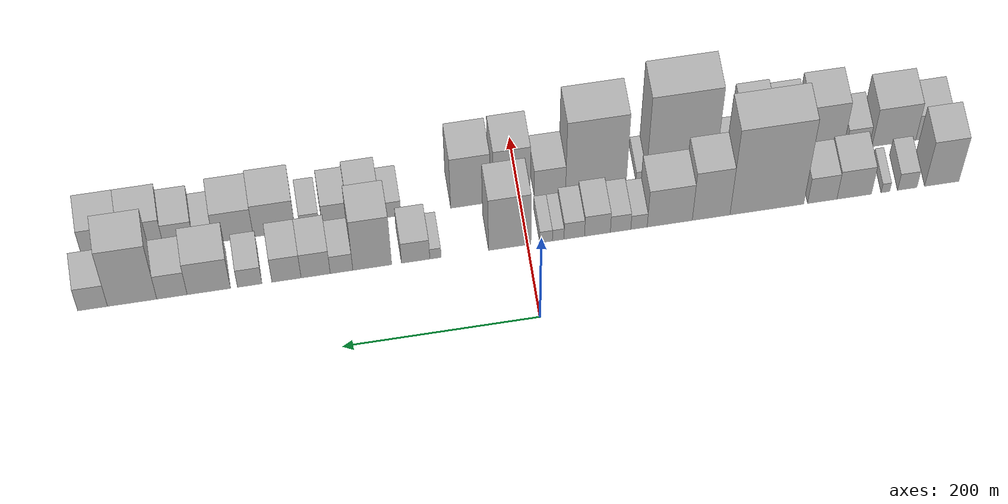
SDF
<sdf version="1.6">
 <world name="default">
  <scene>
   <sky><clouds><speed>12</speed></clouds></sky>
   <ambient>0.4 0.4 0.4 1</ambient>
   <background>0.7 0.7 0.7 1</background>
   <shadows>1</shadows>
  </scene>
  <gravity>0 0 -9.8066</gravity>
  <magnetic_field>6e-06 2.3e-05 -4.2e-05</magnetic_field>
  <physics default="0" name="default_physics" type="ode">
   <ode>
    <solver>
     <type>quick</type>
     <iters>10</iters>
     <sor>1.0</sor>
     <use_dynamic_moi_rescaling>0</use_dynamic_moi_rescaling>
    </solver>
    <constraints>
     <cfm>0</cfm>
     <erp>0.2</erp>
     <contact_max_correcting_vel>100</contact_max_correcting_vel>
     <contact_surface_layer>0.001</contact_surface_layer>
    </constraints>
   </ode>
   <max_step_size>0.004</max_step_size>
   <real_time_factor>1</real_time_factor>
   <real_time_update_rate>250</real_time_update_rate>
  </physics>
  <light name="sun" type="directional">
   <pose>0 0 10 0 0 0</pose>
   <diffuse>0.8 0.8 0.8 1</diffuse>
   <specular>0.2 0.2 0.2 1</specular>
   <attenuation>
    <range>1000</range>
    <constant>0.9</constant>
    <linear>0.01</linear>
    <quadratic>0.001</quadratic>
   </attenuation>
   <direction>-0.5 0.1 -0.9</direction>
  </light>
  <model name="building_1">
   <static>1</static>
   <pose>100.0000 -426.2330 0 0.000000 0.000000 0.000000</pose>
   <link name="link">
    <pose>0 0 52.50 0 0 0</pose>
    <collision name="collision"><geometry><box><size>40.0000 35.5341 105.0000</size></box></geometry></collision>
    <visual name="visual">
     <cast_shadows>0</cast_shadows>
     <geometry><box><size>40.0000 35.5341 105.0000</size></box></geometry>
     <material>
      <script>
       <uri>model://HANNAS_wall/materials/scripts</uri>
       <uri>model://HANNAS_wall/materials/textures</uri>
       <name>vrc/HANNAS_wall</name>
      </script>
     </material>
    </visual>
   </link>
  </model>
  <model name="building_2">
   <static>1</static>
   <pose>100.0000 -390.4082 0 0.000000 0.000000 0.000000</pose>
   <link name="link">
    <pose>0 0 19.50 0 0 0</pose>
    <collision name="collision"><geometry><box><size>40.0000 20.1155 39.0000</size></box></geometry></collision>
    <visual name="visual">
     <cast_shadows>0</cast_shadows>
     <geometry><box><size>40.0000 20.1155 39.0000</size></box></geometry>
     <material>
      <script>
       <uri>model://HANNAS_wall/materials/scripts</uri>
       <uri>model://HANNAS_wall/materials/textures</uri>
       <name>vrc/HANNAS_wall</name>
      </script>
     </material>
    </visual>
   </link>
  </model>
  <model name="building_3">
   <static>1</static>
   <pose>100.0000 -367.8501 0 0.000000 0.000000 0.000000</pose>
   <link name="link">
    <pose>0 0 10.50 0 0 0</pose>
    <collision name="collision"><geometry><box><size>40.0000 9.0007 21.0000</size></box></geometry></collision>
    <visual name="visual">
     <cast_shadows>0</cast_shadows>
     <geometry><box><size>40.0000 9.0007 21.0000</size></box></geometry>
     <material>
      <script>
       <uri>model://HANNAS_wall/materials/scripts</uri>
       <uri>model://HANNAS_wall/materials/textures</uri>
       <name>vrc/HANNAS_wall</name>
      </script>
     </material>
    </visual>
   </link>
  </model>
  <model name="building_4">
   <static>1</static>
   <pose>100.0000 -335.4870 0 0.000000 0.000000 0.000000</pose>
   <link name="link">
    <pose>0 0 33.00 0 0 0</pose>
    <collision name="collision"><geometry><box><size>40.0000 35.7254 66.0000</size></box></geometry></collision>
    <visual name="visual">
     <cast_shadows>0</cast_shadows>
     <geometry><box><size>40.0000 35.7254 66.0000</size></box></geometry>
     <material>
      <script>
       <uri>model://HANNAS_wall/materials/scripts</uri>
       <uri>model://HANNAS_wall/materials/textures</uri>
       <name>vrc/HANNAS_wall</name>
      </script>
     </material>
    </visual>
   </link>
  </model>
  <model name="building_5">
   <static>1</static>
   <pose>100.0000 -302.4615 0 0.000000 0.000000 0.000000</pose>
   <link name="link">
    <pose>0 0 30.00 0 0 0</pose>
    <collision name="collision"><geometry><box><size>40.0000 30.3257 60.0000</size></box></geometry></collision>
    <visual name="visual">
     <cast_shadows>0</cast_shadows>
     <geometry><box><size>40.0000 30.3257 60.0000</size></box></geometry>
     <material>
      <script>
       <uri>model://HANNAS_wall/materials/scripts</uri>
       <uri>model://HANNAS_wall/materials/textures</uri>
       <name>vrc/HANNAS_wall</name>
      </script>
     </material>
    </visual>
   </link>
  </model>
  <model name="building_6">
   <static>1</static>
   <pose>100.0000 -245.2362 0 0.000000 0.000000 0.000000</pose>
   <link name="link">
    <pose>0 0 100.50 0 0 0</pose>
    <collision name="collision"><geometry><box><size>40.0000 76.1249 201.0000</size></box></geometry></collision>
    <visual name="visual">
     <cast_shadows>0</cast_shadows>
     <geometry><box><size>40.0000 76.1249 201.0000</size></box></geometry>
     <material>
      <script>
       <uri>model://HANNAS_wall/materials/scripts</uri>
       <uri>model://HANNAS_wall/materials/textures</uri>
       <name>vrc/HANNAS_wall</name>
      </script>
     </material>
    </visual>
   </link>
  </model>
  <model name="building_7">
   <static>1</static>
   <pose>100.0000 -187.8042 0 0.000000 0.000000 0.000000</pose>
   <link name="link">
    <pose>0 0 57.00 0 0 0</pose>
    <collision name="collision"><geometry><box><size>40.0000 38.7392 114.0000</size></box></geometry></collision>
    <visual name="visual">
     <cast_shadows>0</cast_shadows>
     <geometry><box><size>40.0000 38.7392 114.0000</size></box></geometry>
     <material>
      <script>
       <uri>model://HANNAS_wall/materials/scripts</uri>
       <uri>model://HANNAS_wall/materials/textures</uri>
       <name>vrc/HANNAS_wall</name>
      </script>
     </material>
    </visual>
   </link>
  </model>
  <model name="building_8">
   <static>1</static>
   <pose>100.0000 -145.2583 0 0.000000 0.000000 0.000000</pose>
   <link name="link">
    <pose>0 0 43.50 0 0 0</pose>
    <collision name="collision"><geometry><box><size>40.0000 46.3527 87.0000</size></box></geometry></collision>
    <visual name="visual">
     <cast_shadows>0</cast_shadows>
     <geometry><box><size>40.0000 46.3527 87.0000</size></box></geometry>
     <material>
      <script>
       <uri>model://HANNAS_wall/materials/scripts</uri>
       <uri>model://HANNAS_wall/materials/textures</uri>
       <name>vrc/HANNAS_wall</name>
      </script>
     </material>
    </visual>
   </link>
  </model>
  <model name="building_9">
   <static>1</static>
   <pose>100.0000 -113.6604 0 0.000000 0.000000 0.000000</pose>
   <link name="link">
    <pose>0 0 16.50 0 0 0</pose>
    <collision name="collision"><geometry><box><size>40.0000 16.8431 33.0000</size></box></geometry></collision>
    <visual name="visual">
     <cast_shadows>0</cast_shadows>
     <geometry><box><size>40.0000 16.8431 33.0000</size></box></geometry>
     <material>
      <script>
       <uri>model://HANNAS_wall/materials/scripts</uri>
       <uri>model://HANNAS_wall/materials/textures</uri>
       <name>vrc/HANNAS_wall</name>
      </script>
     </material>
    </visual>
   </link>
  </model>
  <model name="building_10">
   <static>1</static>
   <pose>100.0000 -94.7720 0 0.000000 0.000000 0.000000</pose>
   <link name="link">
    <pose>0 0 19.50 0 0 0</pose>
    <collision name="collision"><geometry><box><size>40.0000 20.9336 39.0000</size></box></geometry></collision>
    <visual name="visual">
     <cast_shadows>0</cast_shadows>
     <geometry><box><size>40.0000 20.9336 39.0000</size></box></geometry>
     <material>
      <script>
       <uri>model://HANNAS_wall/materials/scripts</uri>
       <uri>model://HANNAS_wall/materials/textures</uri>
       <name>vrc/HANNAS_wall</name>
      </script>
     </material>
    </visual>
   </link>
  </model>
  <model name="building_11">
   <static>1</static>
   <pose>100.0000 -71.0831 0 0.000000 0.000000 0.000000</pose>
   <link name="link">
    <pose>0 0 24.00 0 0 0</pose>
    <collision name="collision"><geometry><box><size>40.0000 26.4442 48.0000</size></box></geometry></collision>
    <visual name="visual">
     <cast_shadows>0</cast_shadows>
     <geometry><box><size>40.0000 26.4442 48.0000</size></box></geometry>
     <material>
      <script>
       <uri>model://HANNAS_wall/materials/scripts</uri>
       <uri>model://HANNAS_wall/materials/textures</uri>
       <name>vrc/HANNAS_wall</name>
      </script>
     </material>
    </visual>
   </link>
  </model>
  <model name="building_12">
   <static>1</static>
   <pose>100.0000 -47.3461 0 0.000000 0.000000 0.000000</pose>
   <link name="link">
    <pose>0 0 19.50 0 0 0</pose>
    <collision name="collision"><geometry><box><size>40.0000 21.0297 39.0000</size></box></geometry></collision>
    <visual name="visual">
     <cast_shadows>0</cast_shadows>
     <geometry><box><size>40.0000 21.0297 39.0000</size></box></geometry>
     <material>
      <script>
       <uri>model://HANNAS_wall/materials/scripts</uri>
       <uri>model://HANNAS_wall/materials/textures</uri>
       <name>vrc/HANNAS_wall</name>
      </script>
     </material>
    </visual>
   </link>
  </model>
  <model name="building_13">
   <static>1</static>
   <pose>100.0000 -30.8680 0 0.000000 0.000000 0.000000</pose>
   <link name="link">
    <pose>0 0 13.50 0 0 0</pose>
    <collision name="collision"><geometry><box><size>40.0000 11.9266 27.0000</size></box></geometry></collision>
    <visual name="visual">
     <cast_shadows>0</cast_shadows>
     <geometry><box><size>40.0000 11.9266 27.0000</size></box></geometry>
     <material>
      <script>
       <uri>model://HANNAS_wall/materials/scripts</uri>
       <uri>model://HANNAS_wall/materials/textures</uri>
       <name>vrc/HANNAS_wall</name>
      </script>
     </material>
    </visual>
   </link>
  </model>
  <model name="building_14">
   <static>1</static>
   <pose>100.0000 -18.4749 0 0.000000 0.000000 0.000000</pose>
   <link name="link">
    <pose>0 0 13.50 0 0 0</pose>
    <collision name="collision"><geometry><box><size>40.0000 12.8596 27.0000</size></box></geometry></collision>
    <visual name="visual">
     <cast_shadows>0</cast_shadows>
     <geometry><box><size>40.0000 12.8596 27.0000</size></box></geometry>
     <material>
      <script>
       <uri>model://HANNAS_wall/materials/scripts</uri>
       <uri>model://HANNAS_wall/materials/textures</uri>
       <name>vrc/HANNAS_wall</name>
      </script>
     </material>
    </visual>
   </link>
  </model>
  <model name="building_15">
   <static>1</static>
   <pose>100.0000 18.5562 0 0.000000 0.000000 0.000000</pose>
   <link name="link">
    <pose>0 0 61.50 0 0 0</pose>
    <collision name="collision"><geometry><box><size>40.0000 43.2026 123.0000</size></box></geometry></collision>
    <visual name="visual">
     <cast_shadows>0</cast_shadows>
     <geometry><box><size>40.0000 43.2026 123.0000</size></box></geometry>
     <material>
      <script>
       <uri>model://HANNAS_wall/materials/scripts</uri>
       <uri>model://HANNAS_wall/materials/textures</uri>
       <name>vrc/HANNAS_wall</name>
      </script>
     </material>
    </visual>
   </link>
  </model>
  <model name="building_16">
   <static>1</static>
   <pose>100.0000 94.4241 0 0.000000 0.000000 0.000000</pose>
   <link name="link">
    <pose>0 0 12.00 0 0 0</pose>
    <collision name="collision"><geometry><box><size>40.0000 11.5111 24.0000</size></box></geometry></collision>
    <visual name="visual">
     <cast_shadows>0</cast_shadows>
     <geometry><box><size>40.0000 11.5111 24.0000</size></box></geometry>
     <material>
      <script>
       <uri>model://HANNAS_wall/materials/scripts</uri>
       <uri>model://HANNAS_wall/materials/textures</uri>
       <name>vrc/HANNAS_wall</name>
      </script>
     </material>
    </visual>
   </link>
  </model>
  <model name="building_17">
   <static>1</static>
   <pose>100.0000 114.5668 0 0.000000 0.000000 0.000000</pose>
   <link name="link">
    <pose>0 0 24.00 0 0 0</pose>
    <collision name="collision"><geometry><box><size>40.0000 28.7744 48.0000</size></box></geometry></collision>
    <visual name="visual">
     <cast_shadows>0</cast_shadows>
     <geometry><box><size>40.0000 28.7744 48.0000</size></box></geometry>
     <material>
      <script>
       <uri>model://HANNAS_wall/materials/scripts</uri>
       <uri>model://HANNAS_wall/materials/textures</uri>
       <name>vrc/HANNAS_wall</name>
      </script>
     </material>
    </visual>
   </link>
  </model>
  <model name="building_18">
   <static>1</static>
   <pose>100.0000 158.6601 0 0.000000 0.000000 0.000000</pose>
   <link name="link">
    <pose>0 0 60.00 0 0 0</pose>
    <collision name="collision"><geometry><box><size>40.0000 39.4121 120.0000</size></box></geometry></collision>
    <visual name="visual">
     <cast_shadows>0</cast_shadows>
     <geometry><box><size>40.0000 39.4121 120.0000</size></box></geometry>
     <material>
      <script>
       <uri>model://HANNAS_wall/materials/scripts</uri>
       <uri>model://HANNAS_wall/materials/textures</uri>
       <name>vrc/HANNAS_wall</name>
      </script>
     </material>
    </visual>
   </link>
  </model>
  <model name="building_19">
   <static>1</static>
   <pose>100.0000 189.8388 0 0.000000 0.000000 0.000000</pose>
   <link name="link">
    <pose>0 0 21.00 0 0 0</pose>
    <collision name="collision"><geometry><box><size>40.0000 22.9453 42.0000</size></box></geometry></collision>
    <visual name="visual">
     <cast_shadows>0</cast_shadows>
     <geometry><box><size>40.0000 22.9453 42.0000</size></box></geometry>
     <material>
      <script>
       <uri>model://HANNAS_wall/materials/scripts</uri>
       <uri>model://HANNAS_wall/materials/textures</uri>
       <name>vrc/HANNAS_wall</name>
      </script>
     </material>
    </visual>
   </link>
  </model>
  <model name="building_20">
   <static>1</static>
   <pose>100.0000 216.0935 0 0.000000 0.000000 0.000000</pose>
   <link name="link">
    <pose>0 0 28.50 0 0 0</pose>
    <collision name="collision"><geometry><box><size>40.0000 29.5642 57.0000</size></box></geometry></collision>
    <visual name="visual">
     <cast_shadows>0</cast_shadows>
     <geometry><box><size>40.0000 29.5642 57.0000</size></box></geometry>
     <material>
      <script>
       <uri>model://HANNAS_wall/materials/scripts</uri>
       <uri>model://HANNAS_wall/materials/textures</uri>
       <name>vrc/HANNAS_wall</name>
      </script>
     </material>
    </visual>
   </link>
  </model>
  <model name="building_21">
   <static>1</static>
   <pose>100.0000 245.6529 0 0.000000 0.000000 0.000000</pose>
   <link name="link">
    <pose>0 0 28.50 0 0 0</pose>
    <collision name="collision"><geometry><box><size>40.0000 29.5546 57.0000</size></box></geometry></collision>
    <visual name="visual">
     <cast_shadows>0</cast_shadows>
     <geometry><box><size>40.0000 29.5546 57.0000</size></box></geometry>
     <material>
      <script>
       <uri>model://HANNAS_wall/materials/scripts</uri>
       <uri>model://HANNAS_wall/materials/textures</uri>
       <name>vrc/HANNAS_wall</name>
      </script>
     </material>
    </visual>
   </link>
  </model>
  <model name="building_22">
   <static>1</static>
   <pose>100.0000 282.8418 0 0.000000 0.000000 0.000000</pose>
   <link name="link">
    <pose>0 0 21.00 0 0 0</pose>
    <collision name="collision"><geometry><box><size>40.0000 24.8233 42.0000</size></box></geometry></collision>
    <visual name="visual">
     <cast_shadows>0</cast_shadows>
     <geometry><box><size>40.0000 24.8233 42.0000</size></box></geometry>
     <material>
      <script>
       <uri>model://HANNAS_wall/materials/scripts</uri>
       <uri>model://HANNAS_wall/materials/textures</uri>
       <name>vrc/HANNAS_wall</name>
      </script>
     </material>
    </visual>
   </link>
  </model>
  <model name="building_23">
   <static>1</static>
   <pose>100.0000 324.1625 0 0.000000 0.000000 0.000000</pose>
   <link name="link">
    <pose>0 0 37.50 0 0 0</pose>
    <collision name="collision"><geometry><box><size>40.0000 43.8180 75.0000</size></box></geometry></collision>
    <visual name="visual">
     <cast_shadows>0</cast_shadows>
     <geometry><box><size>40.0000 43.8180 75.0000</size></box></geometry>
     <material>
      <script>
       <uri>model://HANNAS_wall/materials/scripts</uri>
       <uri>model://HANNAS_wall/materials/textures</uri>
       <name>vrc/HANNAS_wall</name>
      </script>
     </material>
    </visual>
   </link>
  </model>
  <model name="building_24">
   <static>1</static>
   <pose>100.0000 361.3892 0 0.000000 0.000000 0.000000</pose>
   <link name="link">
    <pose>0 0 28.50 0 0 0</pose>
    <collision name="collision"><geometry><box><size>40.0000 30.6353 57.0000</size></box></geometry></collision>
    <visual name="visual">
     <cast_shadows>0</cast_shadows>
     <geometry><box><size>40.0000 30.6353 57.0000</size></box></geometry>
     <material>
      <script>
       <uri>model://HANNAS_wall/materials/scripts</uri>
       <uri>model://HANNAS_wall/materials/textures</uri>
       <name>vrc/HANNAS_wall</name>
      </script>
     </material>
    </visual>
   </link>
  </model>
  <model name="building_25">
   <static>1</static>
   <pose>100.0000 401.5009 0 0.000000 0.000000 0.000000</pose>
   <link name="link">
    <pose>0 0 67.50 0 0 0</pose>
    <collision name="collision"><geometry><box><size>40.0000 49.5881 135.0000</size></box></geometry></collision>
    <visual name="visual">
     <cast_shadows>0</cast_shadows>
     <geometry><box><size>40.0000 49.5881 135.0000</size></box></geometry>
     <material>
      <script>
       <uri>model://HANNAS_wall/materials/scripts</uri>
       <uri>model://HANNAS_wall/materials/textures</uri>
       <name>vrc/HANNAS_wall</name>
      </script>
     </material>
    </visual>
   </link>
  </model>
  <model name="building_26">
   <static>1</static>
   <pose>100.0000 441.2994 0 0.000000 0.000000 0.000000</pose>
   <link name="link">
    <pose>0 0 27.00 0 0 0</pose>
    <collision name="collision"><geometry><box><size>40.0000 30.0090 54.0000</size></box></geometry></collision>
    <visual name="visual">
     <cast_shadows>0</cast_shadows>
     <geometry><box><size>40.0000 30.0090 54.0000</size></box></geometry>
     <material>
      <script>
       <uri>model://HANNAS_wall/materials/scripts</uri>
       <uri>model://HANNAS_wall/materials/textures</uri>
       <name>vrc/HANNAS_wall</name>
      </script>
     </material>
    </visual>
   </link>
  </model>
  <model name="building_27">
   <static>1</static>
   <pose>152.0000 -427.0126 0 0.000000 0.000000 0.000000</pose>
   <link name="link">
    <pose>0 0 28.50 0 0 0</pose>
    <collision name="collision"><geometry><box><size>40.0000 33.9748 57.0000</size></box></geometry></collision>
    <visual name="visual">
     <cast_shadows>0</cast_shadows>
     <geometry><box><size>40.0000 33.9748 57.0000</size></box></geometry>
     <material>
      <script>
       <uri>model://HANNAS_wall/materials/scripts</uri>
       <uri>model://HANNAS_wall/materials/textures</uri>
       <name>vrc/HANNAS_wall</name>
      </script>
     </material>
    </visual>
   </link>
  </model>
  <model name="building_28">
   <static>1</static>
   <pose>152.0000 -387.2508 0 0.000000 0.000000 0.000000</pose>
   <link name="link">
    <pose>0 0 43.50 0 0 0</pose>
    <collision name="collision"><geometry><box><size>40.0000 45.5487 87.0000</size></box></geometry></collision>
    <visual name="visual">
     <cast_shadows>0</cast_shadows>
     <geometry><box><size>40.0000 45.5487 87.0000</size></box></geometry>
     <material>
      <script>
       <uri>model://HANNAS_wall/materials/scripts</uri>
       <uri>model://HANNAS_wall/materials/textures</uri>
       <name>vrc/HANNAS_wall</name>
      </script>
     </material>
    </visual>
   </link>
  </model>
  <model name="building_29">
   <static>1</static>
   <pose>152.0000 -349.2681 0 0.000000 0.000000 0.000000</pose>
   <link name="link">
    <pose>0 0 24.00 0 0 0</pose>
    <collision name="collision"><geometry><box><size>40.0000 24.4169 48.0000</size></box></geometry></collision>
    <visual name="visual">
     <cast_shadows>0</cast_shadows>
     <geometry><box><size>40.0000 24.4169 48.0000</size></box></geometry>
     <material>
      <script>
       <uri>model://HANNAS_wall/materials/scripts</uri>
       <uri>model://HANNAS_wall/materials/textures</uri>
       <name>vrc/HANNAS_wall</name>
      </script>
     </material>
    </visual>
   </link>
  </model>
  <model name="building_30">
   <static>1</static>
   <pose>152.0000 -313.5164 0 0.000000 0.000000 0.000000</pose>
   <link name="link">
    <pose>0 0 57.00 0 0 0</pose>
    <collision name="collision"><geometry><box><size>40.0000 41.0864 114.0000</size></box></geometry></collision>
    <visual name="visual">
     <cast_shadows>0</cast_shadows>
     <geometry><box><size>40.0000 41.0864 114.0000</size></box></geometry>
     <material>
      <script>
       <uri>model://HANNAS_wall/materials/scripts</uri>
       <uri>model://HANNAS_wall/materials/textures</uri>
       <name>vrc/HANNAS_wall</name>
      </script>
     </material>
    </visual>
   </link>
  </model>
  <model name="building_31">
   <static>1</static>
   <pose>152.0000 -273.9052 0 0.000000 0.000000 0.000000</pose>
   <link name="link">
    <pose>0 0 51.00 0 0 0</pose>
    <collision name="collision"><geometry><box><size>40.0000 32.1360 102.0000</size></box></geometry></collision>
    <visual name="visual">
     <cast_shadows>0</cast_shadows>
     <geometry><box><size>40.0000 32.1360 102.0000</size></box></geometry>
     <material>
      <script>
       <uri>model://HANNAS_wall/materials/scripts</uri>
       <uri>model://HANNAS_wall/materials/textures</uri>
       <name>vrc/HANNAS_wall</name>
      </script>
     </material>
    </visual>
   </link>
  </model>
  <model name="building_32">
   <static>1</static>
   <pose>152.0000 -241.0082 0 0.000000 0.000000 0.000000</pose>
   <link name="link">
    <pose>0 0 55.50 0 0 0</pose>
    <collision name="collision"><geometry><box><size>40.0000 33.6579 111.0000</size></box></geometry></collision>
    <visual name="visual">
     <cast_shadows>0</cast_shadows>
     <geometry><box><size>40.0000 33.6579 111.0000</size></box></geometry>
     <material>
      <script>
       <uri>model://HANNAS_wall/materials/scripts</uri>
       <uri>model://HANNAS_wall/materials/textures</uri>
       <name>vrc/HANNAS_wall</name>
      </script>
     </material>
    </visual>
   </link>
  </model>
  <model name="building_33">
   <static>1</static>
   <pose>152.0000 -214.4178 0 0.000000 0.000000 0.000000</pose>
   <link name="link">
    <pose>0 0 18.00 0 0 0</pose>
    <collision name="collision"><geometry><box><size>40.0000 19.5230 36.0000</size></box></geometry></collision>
    <visual name="visual">
     <cast_shadows>0</cast_shadows>
     <geometry><box><size>40.0000 19.5230 36.0000</size></box></geometry>
     <material>
      <script>
       <uri>model://HANNAS_wall/materials/scripts</uri>
       <uri>model://HANNAS_wall/materials/textures</uri>
       <name>vrc/HANNAS_wall</name>
      </script>
     </material>
    </visual>
   </link>
  </model>
  <model name="building_34">
   <static>1</static>
   <pose>152.0000 -165.8614 0 0.000000 0.000000 0.000000</pose>
   <link name="link">
    <pose>0 0 96.00 0 0 0</pose>
    <collision name="collision"><geometry><box><size>40.0000 71.5899 192.0000</size></box></geometry></collision>
    <visual name="visual">
     <cast_shadows>0</cast_shadows>
     <geometry><box><size>40.0000 71.5899 192.0000</size></box></geometry>
     <material>
      <script>
       <uri>model://HANNAS_wall/materials/scripts</uri>
       <uri>model://HANNAS_wall/materials/textures</uri>
       <name>vrc/HANNAS_wall</name>
      </script>
     </material>
    </visual>
   </link>
  </model>
  <model name="building_35">
   <static>1</static>
   <pose>152.0000 -124.8272 0 0.000000 0.000000 0.000000</pose>
   <link name="link">
    <pose>0 0 10.50 0 0 0</pose>
    <collision name="collision"><geometry><box><size>40.0000 10.4786 21.0000</size></box></geometry></collision>
    <visual name="visual">
     <cast_shadows>0</cast_shadows>
     <geometry><box><size>40.0000 10.4786 21.0000</size></box></geometry>
     <material>
      <script>
       <uri>model://HANNAS_wall/materials/scripts</uri>
       <uri>model://HANNAS_wall/materials/textures</uri>
       <name>vrc/HANNAS_wall</name>
      </script>
     </material>
    </visual>
   </link>
  </model>
  <model name="building_36">
   <static>1</static>
   <pose>152.0000 -78.3259 0 0.000000 0.000000 0.000000</pose>
   <link name="link">
    <pose>0 0 81.00 0 0 0</pose>
    <collision name="collision"><geometry><box><size>40.0000 62.5240 162.0000</size></box></geometry></collision>
    <visual name="visual">
     <cast_shadows>0</cast_shadows>
     <geometry><box><size>40.0000 62.5240 162.0000</size></box></geometry>
     <material>
      <script>
       <uri>model://HANNAS_wall/materials/scripts</uri>
       <uri>model://HANNAS_wall/materials/textures</uri>
       <name>vrc/HANNAS_wall</name>
      </script>
     </material>
    </visual>
   </link>
  </model>
  <model name="building_37">
   <static>1</static>
   <pose>152.0000 -30.8883 0 0.000000 0.000000 0.000000</pose>
   <link name="link">
    <pose>0 0 30.00 0 0 0</pose>
    <collision name="collision"><geometry><box><size>40.0000 32.3511 60.0000</size></box></geometry></collision>
    <visual name="visual">
     <cast_shadows>0</cast_shadows>
     <geometry><box><size>40.0000 32.3511 60.0000</size></box></geometry>
     <material>
      <script>
       <uri>model://HANNAS_wall/materials/scripts</uri>
       <uri>model://HANNAS_wall/materials/textures</uri>
       <name>vrc/HANNAS_wall</name>
      </script>
     </material>
    </visual>
   </link>
  </model>
  <model name="building_38">
   <static>1</static>
   <pose>152.0000 8.1981 0 0.000000 0.000000 0.000000</pose>
   <link name="link">
    <pose>0 0 60.00 0 0 0</pose>
    <collision name="collision"><geometry><box><size>40.0000 37.8216 120.0000</size></box></geometry></collision>
    <visual name="visual">
     <cast_shadows>0</cast_shadows>
     <geometry><box><size>40.0000 37.8216 120.0000</size></box></geometry>
     <material>
      <script>
       <uri>model://HANNAS_wall/materials/scripts</uri>
       <uri>model://HANNAS_wall/materials/textures</uri>
       <name>vrc/HANNAS_wall</name>
      </script>
     </material>
    </visual>
   </link>
  </model>
  <model name="building_39">
   <static>1</static>
   <pose>152.0000 50.5428 0 0.000000 0.000000 0.000000</pose>
   <link name="link">
    <pose>0 0 58.50 0 0 0</pose>
    <collision name="collision"><geometry><box><size>40.0000 40.8679 117.0000</size></box></geometry></collision>
    <visual name="visual">
     <cast_shadows>0</cast_shadows>
     <geometry><box><size>40.0000 40.8679 117.0000</size></box></geometry>
     <material>
      <script>
       <uri>model://HANNAS_wall/materials/scripts</uri>
       <uri>model://HANNAS_wall/materials/textures</uri>
       <name>vrc/HANNAS_wall</name>
      </script>
     </material>
    </visual>
   </link>
  </model>
  <model name="building_40">
   <static>1</static>
   <pose>152.0000 132.4006 0 0.000000 0.000000 0.000000</pose>
   <link name="link">
    <pose>0 0 18.00 0 0 0</pose>
    <collision name="collision"><geometry><box><size>40.0000 20.9492 36.0000</size></box></geometry></collision>
    <visual name="visual">
     <cast_shadows>0</cast_shadows>
     <geometry><box><size>40.0000 20.9492 36.0000</size></box></geometry>
     <material>
      <script>
       <uri>model://HANNAS_wall/materials/scripts</uri>
       <uri>model://HANNAS_wall/materials/textures</uri>
       <name>vrc/HANNAS_wall</name>
      </script>
     </material>
    </visual>
   </link>
  </model>
  <model name="building_41">
   <static>1</static>
   <pose>152.0000 159.3738 0 0.000000 0.000000 0.000000</pose>
   <link name="link">
    <pose>0 0 31.50 0 0 0</pose>
    <collision name="collision"><geometry><box><size>40.0000 32.9972 63.0000</size></box></geometry></collision>
    <visual name="visual">
     <cast_shadows>0</cast_shadows>
     <geometry><box><size>40.0000 32.9972 63.0000</size></box></geometry>
     <material>
      <script>
       <uri>model://HANNAS_wall/materials/scripts</uri>
       <uri>model://HANNAS_wall/materials/textures</uri>
       <name>vrc/HANNAS_wall</name>
      </script>
     </material>
    </visual>
   </link>
  </model>
  <model name="building_42">
   <static>1</static>
   <pose>152.0000 189.0465 0 0.000000 0.000000 0.000000</pose>
   <link name="link">
    <pose>0 0 25.50 0 0 0</pose>
    <collision name="collision"><geometry><box><size>40.0000 26.3481 51.0000</size></box></geometry></collision>
    <visual name="visual">
     <cast_shadows>0</cast_shadows>
     <geometry><box><size>40.0000 26.3481 51.0000</size></box></geometry>
     <material>
      <script>
       <uri>model://HANNAS_wall/materials/scripts</uri>
       <uri>model://HANNAS_wall/materials/textures</uri>
       <name>vrc/HANNAS_wall</name>
      </script>
     </material>
    </visual>
   </link>
  </model>
  <model name="building_43">
   <static>1</static>
   <pose>152.0000 215.0175 0 0.000000 0.000000 0.000000</pose>
   <link name="link">
    <pose>0 0 18.00 0 0 0</pose>
    <collision name="collision"><geometry><box><size>40.0000 19.5939 36.0000</size></box></geometry></collision>
    <visual name="visual">
     <cast_shadows>0</cast_shadows>
     <geometry><box><size>40.0000 19.5939 36.0000</size></box></geometry>
     <material>
      <script>
       <uri>model://HANNAS_wall/materials/scripts</uri>
       <uri>model://HANNAS_wall/materials/textures</uri>
       <name>vrc/HANNAS_wall</name>
      </script>
     </material>
    </visual>
   </link>
  </model>
  <model name="building_44">
   <static>1</static>
   <pose>152.0000 251.1069 0 0.000000 0.000000 0.000000</pose>
   <link name="link">
    <pose>0 0 37.50 0 0 0</pose>
    <collision name="collision"><geometry><box><size>40.0000 42.5850 75.0000</size></box></geometry></collision>
    <visual name="visual">
     <cast_shadows>0</cast_shadows>
     <geometry><box><size>40.0000 42.5850 75.0000</size></box></geometry>
     <material>
      <script>
       <uri>model://HANNAS_wall/materials/scripts</uri>
       <uri>model://HANNAS_wall/materials/textures</uri>
       <name>vrc/HANNAS_wall</name>
      </script>
     </material>
    </visual>
   </link>
  </model>
  <model name="building_45">
   <static>1</static>
   <pose>152.0000 292.6199 0 0.000000 0.000000 0.000000</pose>
   <link name="link">
    <pose>0 0 34.50 0 0 0</pose>
    <collision name="collision"><geometry><box><size>40.0000 40.4411 69.0000</size></box></geometry></collision>
    <visual name="visual">
     <cast_shadows>0</cast_shadows>
     <geometry><box><size>40.0000 40.4411 69.0000</size></box></geometry>
     <material>
      <script>
       <uri>model://HANNAS_wall/materials/scripts</uri>
       <uri>model://HANNAS_wall/materials/textures</uri>
       <name>vrc/HANNAS_wall</name>
      </script>
     </material>
    </visual>
   </link>
  </model>
  <model name="building_46">
   <static>1</static>
   <pose>152.0000 322.6057 0 0.000000 0.000000 0.000000</pose>
   <link name="link">
    <pose>0 0 19.50 0 0 0</pose>
    <collision name="collision"><geometry><box><size>40.0000 19.5304 39.0000</size></box></geometry></collision>
    <visual name="visual">
     <cast_shadows>0</cast_shadows>
     <geometry><box><size>40.0000 19.5304 39.0000</size></box></geometry>
     <material>
      <script>
       <uri>model://HANNAS_wall/materials/scripts</uri>
       <uri>model://HANNAS_wall/materials/textures</uri>
       <name>vrc/HANNAS_wall</name>
      </script>
     </material>
    </visual>
   </link>
  </model>
  <model name="building_47">
   <static>1</static>
   <pose>152.0000 347.6718 0 0.000000 0.000000 0.000000</pose>
   <link name="link">
    <pose>0 0 30.00 0 0 0</pose>
    <collision name="collision"><geometry><box><size>40.0000 30.6017 60.0000</size></box></geometry></collision>
    <visual name="visual">
     <cast_shadows>0</cast_shadows>
     <geometry><box><size>40.0000 30.6017 60.0000</size></box></geometry>
     <material>
      <script>
       <uri>model://HANNAS_wall/materials/scripts</uri>
       <uri>model://HANNAS_wall/materials/textures</uri>
       <name>vrc/HANNAS_wall</name>
      </script>
     </material>
    </visual>
   </link>
  </model>
  <model name="building_48">
   <static>1</static>
   <pose>152.0000 383.7663 0 0.000000 0.000000 0.000000</pose>
   <link name="link">
    <pose>0 0 37.50 0 0 0</pose>
    <collision name="collision"><geometry><box><size>40.0000 41.5875 75.0000</size></box></geometry></collision>
    <visual name="visual">
     <cast_shadows>0</cast_shadows>
     <geometry><box><size>40.0000 41.5875 75.0000</size></box></geometry>
     <material>
      <script>
       <uri>model://HANNAS_wall/materials/scripts</uri>
       <uri>model://HANNAS_wall/materials/textures</uri>
       <name>vrc/HANNAS_wall</name>
      </script>
     </material>
    </visual>
   </link>
  </model>
  <model name="building_49">
   <static>1</static>
   <pose>152.0000 424.7274 0 0.000000 0.000000 0.000000</pose>
   <link name="link">
    <pose>0 0 37.50 0 0 0</pose>
    <collision name="collision"><geometry><box><size>40.0000 40.3346 75.0000</size></box></geometry></collision>
    <visual name="visual">
     <cast_shadows>0</cast_shadows>
     <geometry><box><size>40.0000 40.3346 75.0000</size></box></geometry>
     <material>
      <script>
       <uri>model://HANNAS_wall/materials/scripts</uri>
       <uri>model://HANNAS_wall/materials/textures</uri>
       <name>vrc/HANNAS_wall</name>
      </script>
     </material>
    </visual>
   </link>
  </model>
 </world>
</sdf>
